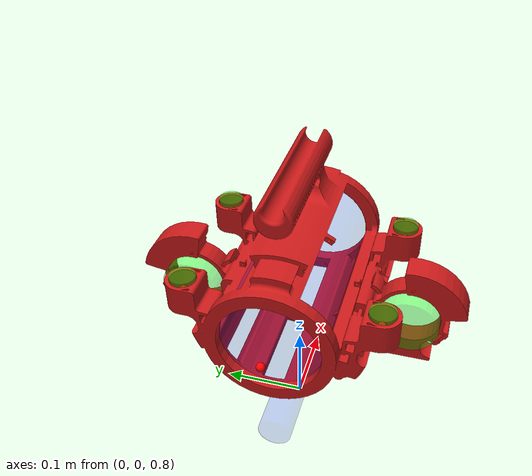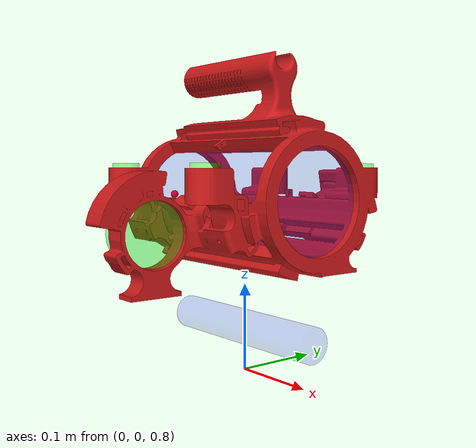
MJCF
<mujoco model="rov_sim">

  <compiler angle="degree"/>

  <option timestep="0.01" density="997" viscosity="1.002" integrator="implicitfast"/>

  <asset>
    <texture name="grid" type="2d" builtin="checker" rgb1=".1 .2 .3" rgb2=".2 .3 .4" width="1000" height="1000" mark="none"/>

    <material name="grid" texture="grid" texrepeat="1 1" texuniform="true" reflectance=".1"/>

    <mesh name="hull" file="meshes/ROV.stl"/>
  </asset>

  <visual>
    <scale framelength="0.2" framewidth="0.02"/>
  </visual>

  <option gravity="0 0 -9.81"/>

  <worldbody>

    <light name="sun" directional="true" diffuse="1 1 1" specular="0.1 0.1 0.1" dir="-1 -1 -1" cutoff="180"/>

    <geom name="floor" type="plane" pos="0 0 0" size="30 30 .01" material="grid" friction=".001"/>
    <camera name="follow_cam" mode="track" target="Thrusters" pos="0 -2 1.5"/>

    <body name="hull_link" pos="0 0 1" euler = "0 -90 0">

      <geom name="hull_link_geom" type="cylinder" size="0.058 0.115" rgba="0 0 1 0.2" fluidshape="ellipsoid" fluidcoef="3.0" density="400"/>

      <geom name="mass" type="cylinder" size="0.02 0.115" rgba="0 0 1 0.2" pos="-0.15 0 -0." density="10000"/>

      <geom type="mesh" mesh="hull" rgba="0.8 0.1 0.1 1" euler = "-90 90 0" pos="0 0 0.1265" density="400" fluidshape="ellipsoid" fluidcoef="1.0"/>

      <body name="Thrusters" pos="0 0 0" euler = "0 90 0">

        <geom name="thrust_1_geom" type="cylinder" size="0.035 0.02" rgba="0 1 0 0.4" pos= "0. -0.133 -0.033" euler = "0 -90 0" fluidshape="ellipsoid" fluidcoef="1.0" density="400"/>
        <geom name="thrust_2_geom" type="cylinder" size="0.035 0.02" rgba="0 1 0 0.4" pos= "0. 0.133 -0.033" euler = "0 -90 0" fluidshape="ellipsoid" fluidcoef="1.0" density="400"/>

        <geom name="thrust_3_geom" type="cylinder" size="0.015 0.02" rgba="0 1 0 0.4" pos= "-0.08 0.11 0.02" fluidshape="ellipsoid" fluidcoef="1.0" density="400"/>
        <geom name="thrust_4_geom" type="cylinder" size="0.015 0.02" rgba="0 1 0 0.4" pos= "0.077 0.11 0.02" fluidshape="ellipsoid" fluidcoef="1.0" density="400"/>
        <geom name="thrust_5_geom" type="cylinder" size="0.015 0.02" rgba="0 1 0 0.4" pos= "-0.08 -0.11 0.02" fluidshape="ellipsoid" fluidcoef="1.0" density="400"/>
        <geom name="thrust_6_geom" type="cylinder" size="0.015 0.02" rgba="0 1 0 0.4" pos= "0.077 -0.11 0.02" fluidshape="ellipsoid" fluidcoef="1.0" density="400"/>

        <!-- Sites to apply force -->
        <site name="imu_site" pos= "-0.15 0 -0." size="0.005" rgba="1 0 0 1"/>
        <site name="thrust_1_site" pos= "0. -0.133 0.009" size="0.005" rgba="1 0 0 1"/>
        <site name="thrust_2_site" pos= "0. 0.133 0.009" size="0.005" rgba="1 0 0 1"/>
        <site name="thrust_3_site" pos= "-0.08 0.11 0.02" size="0.005" rgba="1 0 0 1"/>
        <site name="thrust_4_site" pos= "0.077 0.11 0.02" size="0.005" rgba="1 0 0 1"/>
        <site name="thrust_5_site" pos= "-0.08 -0.11 0.02" size="0.005" rgba="1 0 0 1"/>
        <site name="thrust_6_site" pos= "0.077 -0.11 0.02" size="0.005" rgba="1 0 0 1"/>

      </body>

      <joint name="first_joint" type="free"/>

    </body>

  </worldbody>

  <sensor>

    <accelerometer name="accel" site="imu_site" noise="0.001" cutoff="100"/>
    <gyro name="gyro" site="imu_site" noise="0.0001" cutoff="50"/>

  </sensor>

  <actuator>
    <!-- Vertical thrusters -->
    <motor name="thrust1" site="thrust_1_site" gear="1 0 0"/>
    <!-- Up -->
    <motor name="thrust2" site="thrust_2_site" gear="1 0 0"/>
    <!-- Up -->

    <!-- Lateral thrusters -->
    <motor name="thrust3" site="thrust_3_site" gear="0 0 1"/>
    <!-- Forward -->
    <motor name="thrust4" site="thrust_4_site" gear="0 0 1"/>
    <!-- Forward -->

    <!-- Side thrusters -->
    <motor name="thrust5" site="thrust_5_site" gear="0 0 1"/>
    <!-- Right -->
    <motor name="thrust6" site="thrust_6_site" gear="0 0 1"/>
    <!-- Left -->
  </actuator>

</mujoco>
